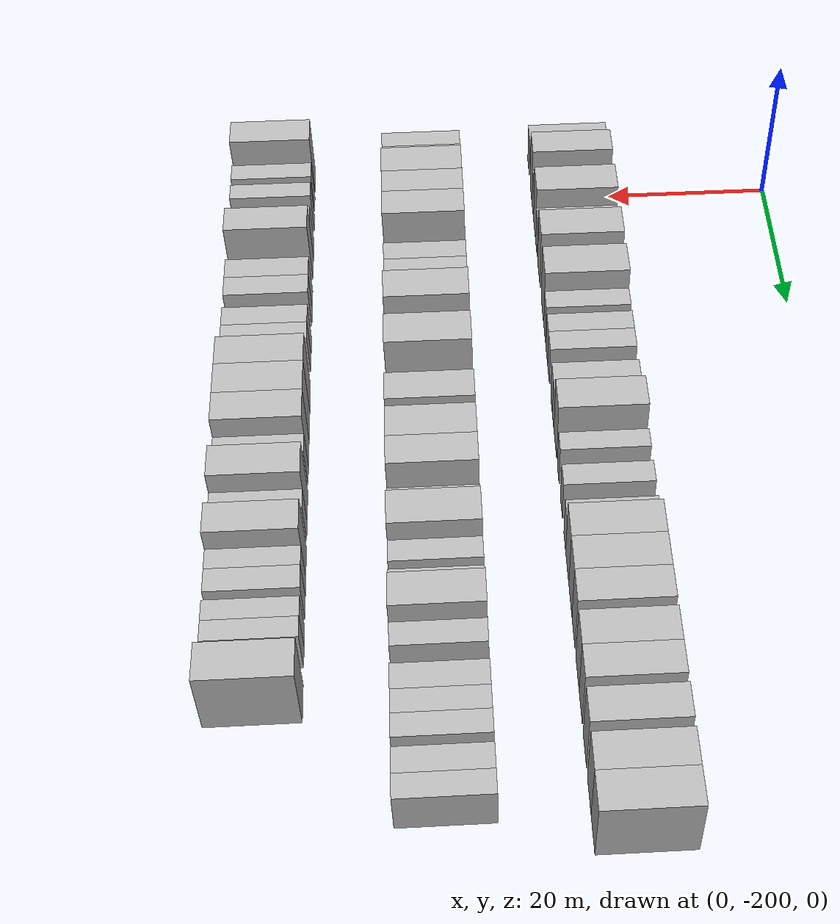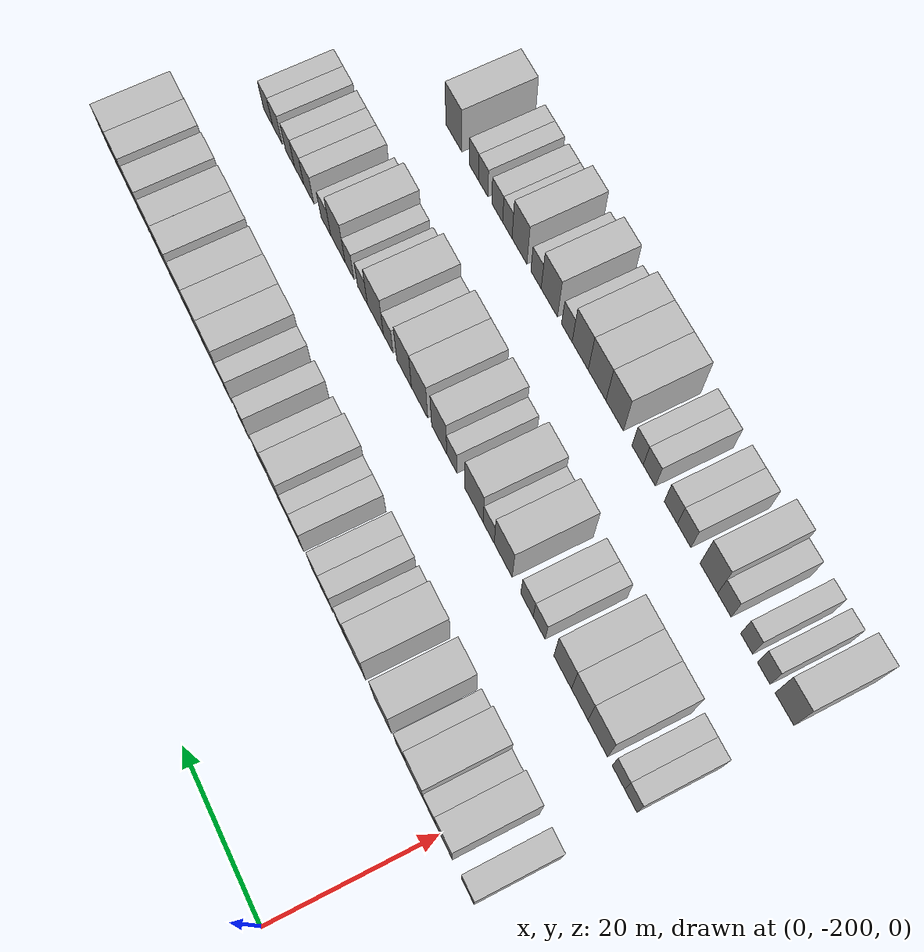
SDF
<sdf version="1.6">
 <world name="default">
  <model name="building_34">
   <static>1</static>
   <pose>25.0000 -206.2779 0 0.000000 0.000000 0.000000</pose>
   <link name="link">
    <pose>0 0 3.00 0 0 0</pose>
    <collision name="collision"><geometry><box><size>10.0000 2.8583 6.0000</size></box></geometry></collision>
    <visual name="visual">
     <cast_shadows>0</cast_shadows>
     <geometry><box><size>10.0000 2.8583 6.0000</size></box></geometry>
     <material>
      <script>
       <uri>model://HANNAS_wall/materials/scripts</uri>
       <uri>model://HANNAS_wall/materials/textures</uri>
       <name>vrc/HANNAS_wall</name>
      </script>
     </material>
    </visual>
   </link>
  </model>
  <model name="building_35">
   <static>1</static>
   <pose>25.0000 -200.9639 0 0.000000 0.000000 0.000000</pose>
   <link name="link">
    <pose>0 0 4.50 0 0 0</pose>
    <collision name="collision"><geometry><box><size>10.0000 3.7698 9.0000</size></box></geometry></collision>
    <visual name="visual">
     <cast_shadows>0</cast_shadows>
     <geometry><box><size>10.0000 3.7698 9.0000</size></box></geometry>
     <material>
      <script>
       <uri>model://HANNAS_wall/materials/scripts</uri>
       <uri>model://HANNAS_wall/materials/textures</uri>
       <name>vrc/HANNAS_wall</name>
      </script>
     </material>
    </visual>
   </link>
  </model>
  <model name="building_36">
   <static>1</static>
   <pose>25.0000 -197.6932 0 0.000000 0.000000 0.000000</pose>
   <link name="link">
    <pose>0 0 3.00 0 0 0</pose>
    <collision name="collision"><geometry><box><size>10.0000 2.7715 6.0000</size></box></geometry></collision>
    <visual name="visual">
     <cast_shadows>0</cast_shadows>
     <geometry><box><size>10.0000 2.7715 6.0000</size></box></geometry>
     <material>
      <script>
       <uri>model://HANNAS_wall/materials/scripts</uri>
       <uri>model://HANNAS_wall/materials/textures</uri>
       <name>vrc/HANNAS_wall</name>
      </script>
     </material>
    </visual>
   </link>
  </model>
  <model name="building_37">
   <static>1</static>
   <pose>25.0000 -194.2032 0 0.000000 0.000000 0.000000</pose>
   <link name="link">
    <pose>0 0 4.50 0 0 0</pose>
    <collision name="collision"><geometry><box><size>10.0000 4.2087 9.0000</size></box></geometry></collision>
    <visual name="visual">
     <cast_shadows>0</cast_shadows>
     <geometry><box><size>10.0000 4.2087 9.0000</size></box></geometry>
     <material>
      <script>
       <uri>model://HANNAS_wall/materials/scripts</uri>
       <uri>model://HANNAS_wall/materials/textures</uri>
       <name>vrc/HANNAS_wall</name>
      </script>
     </material>
    </visual>
   </link>
  </model>
  <model name="building_38">
   <static>1</static>
   <pose>25.0000 -190.8479 0 0.000000 0.000000 0.000000</pose>
   <link name="link">
    <pose>0 0 3.00 0 0 0</pose>
    <collision name="collision"><geometry><box><size>10.0000 2.5019 6.0000</size></box></geometry></collision>
    <visual name="visual">
     <cast_shadows>0</cast_shadows>
     <geometry><box><size>10.0000 2.5019 6.0000</size></box></geometry>
     <material>
      <script>
       <uri>model://HANNAS_wall/materials/scripts</uri>
       <uri>model://HANNAS_wall/materials/textures</uri>
       <name>vrc/HANNAS_wall</name>
      </script>
     </material>
    </visual>
   </link>
  </model>
  <model name="building_39">
   <static>1</static>
   <pose>25.0000 -186.4623 0 0.000000 0.000000 0.000000</pose>
   <link name="link">
    <pose>0 0 4.50 0 0 0</pose>
    <collision name="collision"><geometry><box><size>10.0000 4.2692 9.0000</size></box></geometry></collision>
    <visual name="visual">
     <cast_shadows>0</cast_shadows>
     <geometry><box><size>10.0000 4.2692 9.0000</size></box></geometry>
     <material>
      <script>
       <uri>model://HANNAS_wall/materials/scripts</uri>
       <uri>model://HANNAS_wall/materials/textures</uri>
       <name>vrc/HANNAS_wall</name>
      </script>
     </material>
    </visual>
   </link>
  </model>
  <model name="building_40">
   <static>1</static>
   <pose>25.0000 -180.0829 0 0.000000 0.000000 0.000000</pose>
   <link name="link">
    <pose>0 0 4.50 0 0 0</pose>
    <collision name="collision"><geometry><box><size>10.0000 4.4897 9.0000</size></box></geometry></collision>
    <visual name="visual">
     <cast_shadows>0</cast_shadows>
     <geometry><box><size>10.0000 4.4897 9.0000</size></box></geometry>
     <material>
      <script>
       <uri>model://HANNAS_wall/materials/scripts</uri>
       <uri>model://HANNAS_wall/materials/textures</uri>
       <name>vrc/HANNAS_wall</name>
      </script>
     </material>
    </visual>
   </link>
  </model>
  <model name="building_41">
   <static>1</static>
   <pose>25.0000 -176.4945 0 0.000000 0.000000 0.000000</pose>
   <link name="link">
    <pose>0 0 3.00 0 0 0</pose>
    <collision name="collision"><geometry><box><size>10.0000 2.6871 6.0000</size></box></geometry></collision>
    <visual name="visual">
     <cast_shadows>0</cast_shadows>
     <geometry><box><size>10.0000 2.6871 6.0000</size></box></geometry>
     <material>
      <script>
       <uri>model://HANNAS_wall/materials/scripts</uri>
       <uri>model://HANNAS_wall/materials/textures</uri>
       <name>vrc/HANNAS_wall</name>
      </script>
     </material>
    </visual>
   </link>
  </model>
  <model name="building_42">
   <static>1</static>
   <pose>25.0000 -172.7683 0 0.000000 0.000000 0.000000</pose>
   <link name="link">
    <pose>0 0 3.00 0 0 0</pose>
    <collision name="collision"><geometry><box><size>10.0000 2.7653 6.0000</size></box></geometry></collision>
    <visual name="visual">
     <cast_shadows>0</cast_shadows>
     <geometry><box><size>10.0000 2.7653 6.0000</size></box></geometry>
     <material>
      <script>
       <uri>model://HANNAS_wall/materials/scripts</uri>
       <uri>model://HANNAS_wall/materials/textures</uri>
       <name>vrc/HANNAS_wall</name>
      </script>
     </material>
    </visual>
   </link>
  </model>
  <model name="building_43">
   <static>1</static>
   <pose>25.0000 -169.9595 0 0.000000 0.000000 0.000000</pose>
   <link name="link">
    <pose>0 0 3.00 0 0 0</pose>
    <collision name="collision"><geometry><box><size>10.0000 2.8523 6.0000</size></box></geometry></collision>
    <visual name="visual">
     <cast_shadows>0</cast_shadows>
     <geometry><box><size>10.0000 2.8523 6.0000</size></box></geometry>
     <material>
      <script>
       <uri>model://HANNAS_wall/materials/scripts</uri>
       <uri>model://HANNAS_wall/materials/textures</uri>
       <name>vrc/HANNAS_wall</name>
      </script>
     </material>
    </visual>
   </link>
  </model>
  <model name="building_44">
   <static>1</static>
   <pose>25.0000 -165.2083 0 0.000000 0.000000 0.000000</pose>
   <link name="link">
    <pose>0 0 3.00 0 0 0</pose>
    <collision name="collision"><geometry><box><size>10.0000 2.6502 6.0000</size></box></geometry></collision>
    <visual name="visual">
     <cast_shadows>0</cast_shadows>
     <geometry><box><size>10.0000 2.6502 6.0000</size></box></geometry>
     <material>
      <script>
       <uri>model://HANNAS_wall/materials/scripts</uri>
       <uri>model://HANNAS_wall/materials/textures</uri>
       <name>vrc/HANNAS_wall</name>
      </script>
     </material>
    </visual>
   </link>
  </model>
  <model name="building_45">
   <static>1</static>
   <pose>25.0000 -162.6723 0 0.000000 0.000000 0.000000</pose>
   <link name="link">
    <pose>0 0 3.00 0 0 0</pose>
    <collision name="collision"><geometry><box><size>10.0000 2.4218 6.0000</size></box></geometry></collision>
    <visual name="visual">
     <cast_shadows>0</cast_shadows>
     <geometry><box><size>10.0000 2.4218 6.0000</size></box></geometry>
     <material>
      <script>
       <uri>model://HANNAS_wall/materials/scripts</uri>
       <uri>model://HANNAS_wall/materials/textures</uri>
       <name>vrc/HANNAS_wall</name>
      </script>
     </material>
    </visual>
   </link>
  </model>
  <model name="building_46">
   <static>1</static>
   <pose>25.0000 -159.3870 0 0.000000 0.000000 0.000000</pose>
   <link name="link">
    <pose>0 0 4.50 0 0 0</pose>
    <collision name="collision"><geometry><box><size>10.0000 4.1486 9.0000</size></box></geometry></collision>
    <visual name="visual">
     <cast_shadows>0</cast_shadows>
     <geometry><box><size>10.0000 4.1486 9.0000</size></box></geometry>
     <material>
      <script>
       <uri>model://HANNAS_wall/materials/scripts</uri>
       <uri>model://HANNAS_wall/materials/textures</uri>
       <name>vrc/HANNAS_wall</name>
      </script>
     </material>
    </visual>
   </link>
  </model>
  <model name="building_47">
   <static>1</static>
   <pose>25.0000 -155.0709 0 0.000000 0.000000 0.000000</pose>
   <link name="link">
    <pose>0 0 3.00 0 0 0</pose>
    <collision name="collision"><geometry><box><size>10.0000 2.4835 6.0000</size></box></geometry></collision>
    <visual name="visual">
     <cast_shadows>0</cast_shadows>
     <geometry><box><size>10.0000 2.4835 6.0000</size></box></geometry>
     <material>
      <script>
       <uri>model://HANNAS_wall/materials/scripts</uri>
       <uri>model://HANNAS_wall/materials/textures</uri>
       <name>vrc/HANNAS_wall</name>
      </script>
     </material>
    </visual>
   </link>
  </model>
  <model name="building_48">
   <static>1</static>
   <pose>25.0000 -150.4321 0 0.000000 0.000000 0.000000</pose>
   <link name="link">
    <pose>0 0 3.00 0 0 0</pose>
    <collision name="collision"><geometry><box><size>10.0000 2.7941 6.0000</size></box></geometry></collision>
    <visual name="visual">
     <cast_shadows>0</cast_shadows>
     <geometry><box><size>10.0000 2.7941 6.0000</size></box></geometry>
     <material>
      <script>
       <uri>model://HANNAS_wall/materials/scripts</uri>
       <uri>model://HANNAS_wall/materials/textures</uri>
       <name>vrc/HANNAS_wall</name>
      </script>
     </material>
    </visual>
   </link>
  </model>
  <model name="building_49">
   <static>1</static>
   <pose>25.0000 -145.6958 0 0.000000 0.000000 0.000000</pose>
   <link name="link">
    <pose>0 0 3.00 0 0 0</pose>
    <collision name="collision"><geometry><box><size>10.0000 2.6785 6.0000</size></box></geometry></collision>
    <visual name="visual">
     <cast_shadows>0</cast_shadows>
     <geometry><box><size>10.0000 2.6785 6.0000</size></box></geometry>
     <material>
      <script>
       <uri>model://HANNAS_wall/materials/scripts</uri>
       <uri>model://HANNAS_wall/materials/textures</uri>
       <name>vrc/HANNAS_wall</name>
      </script>
     </material>
    </visual>
   </link>
  </model>
  <model name="building_50">
   <static>1</static>
   <pose>25.0000 -142.2751 0 0.000000 0.000000 0.000000</pose>
   <link name="link">
    <pose>0 0 4.50 0 0 0</pose>
    <collision name="collision"><geometry><box><size>10.0000 4.1628 9.0000</size></box></geometry></collision>
    <visual name="visual">
     <cast_shadows>0</cast_shadows>
     <geometry><box><size>10.0000 4.1628 9.0000</size></box></geometry>
     <material>
      <script>
       <uri>model://HANNAS_wall/materials/scripts</uri>
       <uri>model://HANNAS_wall/materials/textures</uri>
       <name>vrc/HANNAS_wall</name>
      </script>
     </material>
    </visual>
   </link>
  </model>
  <model name="building_51">
   <static>1</static>
   <pose>25.0000 -138.1461 0 0.000000 0.000000 0.000000</pose>
   <link name="link">
    <pose>0 0 4.50 0 0 0</pose>
    <collision name="collision"><geometry><box><size>10.0000 4.0952 9.0000</size></box></geometry></collision>
    <visual name="visual">
     <cast_shadows>0</cast_shadows>
     <geometry><box><size>10.0000 4.0952 9.0000</size></box></geometry>
     <material>
      <script>
       <uri>model://HANNAS_wall/materials/scripts</uri>
       <uri>model://HANNAS_wall/materials/textures</uri>
       <name>vrc/HANNAS_wall</name>
      </script>
     </material>
    </visual>
   </link>
  </model>
  <model name="building_52">
   <static>1</static>
   <pose>25.0000 -134.1554 0 0.000000 0.000000 0.000000</pose>
   <link name="link">
    <pose>0 0 4.50 0 0 0</pose>
    <collision name="collision"><geometry><box><size>10.0000 3.8862 9.0000</size></box></geometry></collision>
    <visual name="visual">
     <cast_shadows>0</cast_shadows>
     <geometry><box><size>10.0000 3.8862 9.0000</size></box></geometry>
     <material>
      <script>
       <uri>model://HANNAS_wall/materials/scripts</uri>
       <uri>model://HANNAS_wall/materials/textures</uri>
       <name>vrc/HANNAS_wall</name>
      </script>
     </material>
    </visual>
   </link>
  </model>
  <model name="building_53">
   <static>1</static>
   <pose>25.0000 -129.2157 0 0.000000 0.000000 0.000000</pose>
   <link name="link">
    <pose>0 0 4.50 0 0 0</pose>
    <collision name="collision"><geometry><box><size>10.0000 3.9932 9.0000</size></box></geometry></collision>
    <visual name="visual">
     <cast_shadows>0</cast_shadows>
     <geometry><box><size>10.0000 3.9932 9.0000</size></box></geometry>
     <material>
      <script>
       <uri>model://HANNAS_wall/materials/scripts</uri>
       <uri>model://HANNAS_wall/materials/textures</uri>
       <name>vrc/HANNAS_wall</name>
      </script>
     </material>
    </visual>
   </link>
  </model>
  <model name="building_54">
   <static>1</static>
   <pose>25.0000 -125.3410 0 0.000000 0.000000 0.000000</pose>
   <link name="link">
    <pose>0 0 4.50 0 0 0</pose>
    <collision name="collision"><geometry><box><size>10.0000 3.7561 9.0000</size></box></geometry></collision>
    <visual name="visual">
     <cast_shadows>0</cast_shadows>
     <geometry><box><size>10.0000 3.7561 9.0000</size></box></geometry>
     <material>
      <script>
       <uri>model://HANNAS_wall/materials/scripts</uri>
       <uri>model://HANNAS_wall/materials/textures</uri>
       <name>vrc/HANNAS_wall</name>
      </script>
     </material>
    </visual>
   </link>
  </model>
  <model name="building_55">
   <static>1</static>
   <pose>25.0000 -120.5500 0 0.000000 0.000000 0.000000</pose>
   <link name="link">
    <pose>0 0 4.50 0 0 0</pose>
    <collision name="collision"><geometry><box><size>10.0000 3.8260 9.0000</size></box></geometry></collision>
    <visual name="visual">
     <cast_shadows>0</cast_shadows>
     <geometry><box><size>10.0000 3.8260 9.0000</size></box></geometry>
     <material>
      <script>
       <uri>model://HANNAS_wall/materials/scripts</uri>
       <uri>model://HANNAS_wall/materials/textures</uri>
       <name>vrc/HANNAS_wall</name>
      </script>
     </material>
    </visual>
   </link>
  </model>
  <model name="building_56">
   <static>1</static>
   <pose>25.0000 -115.6265 0 0.000000 0.000000 0.000000</pose>
   <link name="link">
    <pose>0 0 4.50 0 0 0</pose>
    <collision name="collision"><geometry><box><size>10.0000 4.0209 9.0000</size></box></geometry></collision>
    <visual name="visual">
     <cast_shadows>0</cast_shadows>
     <geometry><box><size>10.0000 4.0209 9.0000</size></box></geometry>
     <material>
      <script>
       <uri>model://HANNAS_wall/materials/scripts</uri>
       <uri>model://HANNAS_wall/materials/textures</uri>
       <name>vrc/HANNAS_wall</name>
      </script>
     </material>
    </visual>
   </link>
  </model>
  <model name="building_57">
   <static>1</static>
   <pose>25.0000 -111.5318 0 0.000000 0.000000 0.000000</pose>
   <link name="link">
    <pose>0 0 4.50 0 0 0</pose>
    <collision name="collision"><geometry><box><size>10.0000 4.1685 9.0000</size></box></geometry></collision>
    <visual name="visual">
     <cast_shadows>0</cast_shadows>
     <geometry><box><size>10.0000 4.1685 9.0000</size></box></geometry>
     <material>
      <script>
       <uri>model://HANNAS_wall/materials/scripts</uri>
       <uri>model://HANNAS_wall/materials/textures</uri>
       <name>vrc/HANNAS_wall</name>
      </script>
     </material>
    </visual>
   </link>
  </model>
  <model name="building_205">
   <static>1</static>
   <pose>44.0000 -205.8997 0 0.000000 0.000000 0.000000</pose>
   <link name="link">
    <pose>0 0 3.00 0 0 0</pose>
    <collision name="collision"><geometry><box><size>10.0000 2.5930 6.0000</size></box></geometry></collision>
    <visual name="visual">
     <cast_shadows>0</cast_shadows>
     <geometry><box><size>10.0000 2.5930 6.0000</size></box></geometry>
     <material>
      <script>
       <uri>model://HANNAS_wall/materials/scripts</uri>
       <uri>model://HANNAS_wall/materials/textures</uri>
       <name>vrc/HANNAS_wall</name>
      </script>
     </material>
    </visual>
   </link>
  </model>
  <model name="building_206">
   <static>1</static>
   <pose>44.0000 -203.2627 0 0.000000 0.000000 0.000000</pose>
   <link name="link">
    <pose>0 0 3.00 0 0 0</pose>
    <collision name="collision"><geometry><box><size>10.0000 2.6810 6.0000</size></box></geometry></collision>
    <visual name="visual">
     <cast_shadows>0</cast_shadows>
     <geometry><box><size>10.0000 2.6810 6.0000</size></box></geometry>
     <material>
      <script>
       <uri>model://HANNAS_wall/materials/scripts</uri>
       <uri>model://HANNAS_wall/materials/textures</uri>
       <name>vrc/HANNAS_wall</name>
      </script>
     </material>
    </visual>
   </link>
  </model>
  <model name="building_207">
   <static>1</static>
   <pose>44.0000 -198.7807 0 0.000000 0.000000 0.000000</pose>
   <link name="link">
    <pose>0 0 4.50 0 0 0</pose>
    <collision name="collision"><geometry><box><size>10.0000 4.2829 9.0000</size></box></geometry></collision>
    <visual name="visual">
     <cast_shadows>0</cast_shadows>
     <geometry><box><size>10.0000 4.2829 9.0000</size></box></geometry>
     <material>
      <script>
       <uri>model://HANNAS_wall/materials/scripts</uri>
       <uri>model://HANNAS_wall/materials/textures</uri>
       <name>vrc/HANNAS_wall</name>
      </script>
     </material>
    </visual>
   </link>
  </model>
  <model name="building_208">
   <static>1</static>
   <pose>44.0000 -194.8047 0 0.000000 0.000000 0.000000</pose>
   <link name="link">
    <pose>0 0 4.50 0 0 0</pose>
    <collision name="collision"><geometry><box><size>10.0000 3.6692 9.0000</size></box></geometry></collision>
    <visual name="visual">
     <cast_shadows>0</cast_shadows>
     <geometry><box><size>10.0000 3.6692 9.0000</size></box></geometry>
     <material>
      <script>
       <uri>model://HANNAS_wall/materials/scripts</uri>
       <uri>model://HANNAS_wall/materials/textures</uri>
       <name>vrc/HANNAS_wall</name>
      </script>
     </material>
    </visual>
   </link>
  </model>
  <model name="building_209">
   <static>1</static>
   <pose>44.0000 -190.9910 0 0.000000 0.000000 0.000000</pose>
   <link name="link">
    <pose>0 0 4.50 0 0 0</pose>
    <collision name="collision"><geometry><box><size>10.0000 3.9582 9.0000</size></box></geometry></collision>
    <visual name="visual">
     <cast_shadows>0</cast_shadows>
     <geometry><box><size>10.0000 3.9582 9.0000</size></box></geometry>
     <material>
      <script>
       <uri>model://HANNAS_wall/materials/scripts</uri>
       <uri>model://HANNAS_wall/materials/textures</uri>
       <name>vrc/HANNAS_wall</name>
      </script>
     </material>
    </visual>
   </link>
  </model>
  <model name="building_210">
   <static>1</static>
   <pose>44.0000 -185.6369 0 0.000000 0.000000 0.000000</pose>
   <link name="link">
    <pose>0 0 3.00 0 0 0</pose>
    <collision name="collision"><geometry><box><size>10.0000 2.7499 6.0000</size></box></geometry></collision>
    <visual name="visual">
     <cast_shadows>0</cast_shadows>
     <geometry><box><size>10.0000 2.7499 6.0000</size></box></geometry>
     <material>
      <script>
       <uri>model://HANNAS_wall/materials/scripts</uri>
       <uri>model://HANNAS_wall/materials/textures</uri>
       <name>vrc/HANNAS_wall</name>
      </script>
     </material>
    </visual>
   </link>
  </model>
  <model name="building_211">
   <static>1</static>
   <pose>44.0000 -182.8170 0 0.000000 0.000000 0.000000</pose>
   <link name="link">
    <pose>0 0 3.00 0 0 0</pose>
    <collision name="collision"><geometry><box><size>10.0000 2.8900 6.0000</size></box></geometry></collision>
    <visual name="visual">
     <cast_shadows>0</cast_shadows>
     <geometry><box><size>10.0000 2.8900 6.0000</size></box></geometry>
     <material>
      <script>
       <uri>model://HANNAS_wall/materials/scripts</uri>
       <uri>model://HANNAS_wall/materials/textures</uri>
       <name>vrc/HANNAS_wall</name>
      </script>
     </material>
    </visual>
   </link>
  </model>
  <model name="building_212">
   <static>1</static>
   <pose>44.0000 -177.2403 0 0.000000 0.000000 0.000000</pose>
   <link name="link">
    <pose>0 0 4.50 0 0 0</pose>
    <collision name="collision"><geometry><box><size>10.0000 4.2633 9.0000</size></box></geometry></collision>
    <visual name="visual">
     <cast_shadows>0</cast_shadows>
     <geometry><box><size>10.0000 4.2633 9.0000</size></box></geometry>
     <material>
      <script>
       <uri>model://HANNAS_wall/materials/scripts</uri>
       <uri>model://HANNAS_wall/materials/textures</uri>
       <name>vrc/HANNAS_wall</name>
      </script>
     </material>
    </visual>
   </link>
  </model>
  <model name="building_213">
   <static>1</static>
   <pose>44.0000 -173.7747 0 0.000000 0.000000 0.000000</pose>
   <link name="link">
    <pose>0 0 3.00 0 0 0</pose>
    <collision name="collision"><geometry><box><size>10.0000 2.6679 6.0000</size></box></geometry></collision>
    <visual name="visual">
     <cast_shadows>0</cast_shadows>
     <geometry><box><size>10.0000 2.6679 6.0000</size></box></geometry>
     <material>
      <script>
       <uri>model://HANNAS_wall/materials/scripts</uri>
       <uri>model://HANNAS_wall/materials/textures</uri>
       <name>vrc/HANNAS_wall</name>
      </script>
     </material>
    </visual>
   </link>
  </model>
  <model name="building_214">
   <static>1</static>
   <pose>44.0000 -170.2261 0 0.000000 0.000000 0.000000</pose>
   <link name="link">
    <pose>0 0 4.50 0 0 0</pose>
    <collision name="collision"><geometry><box><size>10.0000 4.4292 9.0000</size></box></geometry></collision>
    <visual name="visual">
     <cast_shadows>0</cast_shadows>
     <geometry><box><size>10.0000 4.4292 9.0000</size></box></geometry>
     <material>
      <script>
       <uri>model://HANNAS_wall/materials/scripts</uri>
       <uri>model://HANNAS_wall/materials/textures</uri>
       <name>vrc/HANNAS_wall</name>
      </script>
     </material>
    </visual>
   </link>
  </model>
  <model name="building_215">
   <static>1</static>
   <pose>44.0000 -164.7394 0 0.000000 0.000000 0.000000</pose>
   <link name="link">
    <pose>0 0 3.00 0 0 0</pose>
    <collision name="collision"><geometry><box><size>10.0000 2.5443 6.0000</size></box></geometry></collision>
    <visual name="visual">
     <cast_shadows>0</cast_shadows>
     <geometry><box><size>10.0000 2.5443 6.0000</size></box></geometry>
     <material>
      <script>
       <uri>model://HANNAS_wall/materials/scripts</uri>
       <uri>model://HANNAS_wall/materials/textures</uri>
       <name>vrc/HANNAS_wall</name>
      </script>
     </material>
    </visual>
   </link>
  </model>
  <model name="building_216">
   <static>1</static>
   <pose>44.0000 -161.5590 0 0.000000 0.000000 0.000000</pose>
   <link name="link">
    <pose>0 0 4.50 0 0 0</pose>
    <collision name="collision"><geometry><box><size>10.0000 3.8164 9.0000</size></box></geometry></collision>
    <visual name="visual">
     <cast_shadows>0</cast_shadows>
     <geometry><box><size>10.0000 3.8164 9.0000</size></box></geometry>
     <material>
      <script>
       <uri>model://HANNAS_wall/materials/scripts</uri>
       <uri>model://HANNAS_wall/materials/textures</uri>
       <name>vrc/HANNAS_wall</name>
      </script>
     </material>
    </visual>
   </link>
  </model>
  <model name="building_217">
   <static>1</static>
   <pose>44.0000 -156.5576 0 0.000000 0.000000 0.000000</pose>
   <link name="link">
    <pose>0 0 4.50 0 0 0</pose>
    <collision name="collision"><geometry><box><size>10.0000 4.1865 9.0000</size></box></geometry></collision>
    <visual name="visual">
     <cast_shadows>0</cast_shadows>
     <geometry><box><size>10.0000 4.1865 9.0000</size></box></geometry>
     <material>
      <script>
       <uri>model://HANNAS_wall/materials/scripts</uri>
       <uri>model://HANNAS_wall/materials/textures</uri>
       <name>vrc/HANNAS_wall</name>
      </script>
     </material>
    </visual>
   </link>
  </model>
  <model name="building_218">
   <static>1</static>
   <pose>44.0000 -152.5551 0 0.000000 0.000000 0.000000</pose>
   <link name="link">
    <pose>0 0 4.50 0 0 0</pose>
    <collision name="collision"><geometry><box><size>10.0000 3.8185 9.0000</size></box></geometry></collision>
    <visual name="visual">
     <cast_shadows>0</cast_shadows>
     <geometry><box><size>10.0000 3.8185 9.0000</size></box></geometry>
     <material>
      <script>
       <uri>model://HANNAS_wall/materials/scripts</uri>
       <uri>model://HANNAS_wall/materials/textures</uri>
       <name>vrc/HANNAS_wall</name>
      </script>
     </material>
    </visual>
   </link>
  </model>
  <model name="building_219">
   <static>1</static>
   <pose>44.0000 -148.3747 0 0.000000 0.000000 0.000000</pose>
   <link name="link">
    <pose>0 0 3.00 0 0 0</pose>
    <collision name="collision"><geometry><box><size>10.0000 2.5425 6.0000</size></box></geometry></collision>
    <visual name="visual">
     <cast_shadows>0</cast_shadows>
     <geometry><box><size>10.0000 2.5425 6.0000</size></box></geometry>
     <material>
      <script>
       <uri>model://HANNAS_wall/materials/scripts</uri>
       <uri>model://HANNAS_wall/materials/textures</uri>
       <name>vrc/HANNAS_wall</name>
      </script>
     </material>
    </visual>
   </link>
  </model>
  <model name="building_220">
   <static>1</static>
   <pose>44.0000 -144.9630 0 0.000000 0.000000 0.000000</pose>
   <link name="link">
    <pose>0 0 4.50 0 0 0</pose>
    <collision name="collision"><geometry><box><size>10.0000 4.2809 9.0000</size></box></geometry></collision>
    <visual name="visual">
     <cast_shadows>0</cast_shadows>
     <geometry><box><size>10.0000 4.2809 9.0000</size></box></geometry>
     <material>
      <script>
       <uri>model://HANNAS_wall/materials/scripts</uri>
       <uri>model://HANNAS_wall/materials/textures</uri>
       <name>vrc/HANNAS_wall</name>
      </script>
     </material>
    </visual>
   </link>
  </model>
  <model name="building_221">
   <static>1</static>
   <pose>44.0000 -141.4853 0 0.000000 0.000000 0.000000</pose>
   <link name="link">
    <pose>0 0 3.00 0 0 0</pose>
    <collision name="collision"><geometry><box><size>10.0000 2.6745 6.0000</size></box></geometry></collision>
    <visual name="visual">
     <cast_shadows>0</cast_shadows>
     <geometry><box><size>10.0000 2.6745 6.0000</size></box></geometry>
     <material>
      <script>
       <uri>model://HANNAS_wall/materials/scripts</uri>
       <uri>model://HANNAS_wall/materials/textures</uri>
       <name>vrc/HANNAS_wall</name>
      </script>
     </material>
    </visual>
   </link>
  </model>
  <model name="building_222">
   <static>1</static>
   <pose>44.0000 -137.9323 0 0.000000 0.000000 0.000000</pose>
   <link name="link">
    <pose>0 0 3.00 0 0 0</pose>
    <collision name="collision"><geometry><box><size>10.0000 2.4314 6.0000</size></box></geometry></collision>
    <visual name="visual">
     <cast_shadows>0</cast_shadows>
     <geometry><box><size>10.0000 2.4314 6.0000</size></box></geometry>
     <material>
      <script>
       <uri>model://HANNAS_wall/materials/scripts</uri>
       <uri>model://HANNAS_wall/materials/textures</uri>
       <name>vrc/HANNAS_wall</name>
      </script>
     </material>
    </visual>
   </link>
  </model>
  <model name="building_223">
   <static>1</static>
   <pose>44.0000 -134.7167 0 0.000000 0.000000 0.000000</pose>
   <link name="link">
    <pose>0 0 4.50 0 0 0</pose>
    <collision name="collision"><geometry><box><size>10.0000 3.9998 9.0000</size></box></geometry></collision>
    <visual name="visual">
     <cast_shadows>0</cast_shadows>
     <geometry><box><size>10.0000 3.9998 9.0000</size></box></geometry>
     <material>
      <script>
       <uri>model://HANNAS_wall/materials/scripts</uri>
       <uri>model://HANNAS_wall/materials/textures</uri>
       <name>vrc/HANNAS_wall</name>
      </script>
     </material>
    </visual>
   </link>
  </model>
  <model name="building_224">
   <static>1</static>
   <pose>44.0000 -131.3244 0 0.000000 0.000000 0.000000</pose>
   <link name="link">
    <pose>0 0 3.00 0 0 0</pose>
    <collision name="collision"><geometry><box><size>10.0000 2.7848 6.0000</size></box></geometry></collision>
    <visual name="visual">
     <cast_shadows>0</cast_shadows>
     <geometry><box><size>10.0000 2.7848 6.0000</size></box></geometry>
     <material>
      <script>
       <uri>model://HANNAS_wall/materials/scripts</uri>
       <uri>model://HANNAS_wall/materials/textures</uri>
       <name>vrc/HANNAS_wall</name>
      </script>
     </material>
    </visual>
   </link>
  </model>
  <model name="building_225">
   <static>1</static>
   <pose>44.0000 -126.4768 0 0.000000 0.000000 0.000000</pose>
   <link name="link">
    <pose>0 0 3.00 0 0 0</pose>
    <collision name="collision"><geometry><box><size>10.0000 2.9105 6.0000</size></box></geometry></collision>
    <visual name="visual">
     <cast_shadows>0</cast_shadows>
     <geometry><box><size>10.0000 2.9105 6.0000</size></box></geometry>
     <material>
      <script>
       <uri>model://HANNAS_wall/materials/scripts</uri>
       <uri>model://HANNAS_wall/materials/textures</uri>
       <name>vrc/HANNAS_wall</name>
      </script>
     </material>
    </visual>
   </link>
  </model>
  <model name="building_226">
   <static>1</static>
   <pose>44.0000 -123.6899 0 0.000000 0.000000 0.000000</pose>
   <link name="link">
    <pose>0 0 3.00 0 0 0</pose>
    <collision name="collision"><geometry><box><size>10.0000 2.6633 6.0000</size></box></geometry></collision>
    <visual name="visual">
     <cast_shadows>0</cast_shadows>
     <geometry><box><size>10.0000 2.6633 6.0000</size></box></geometry>
     <material>
      <script>
       <uri>model://HANNAS_wall/materials/scripts</uri>
       <uri>model://HANNAS_wall/materials/textures</uri>
       <name>vrc/HANNAS_wall</name>
      </script>
     </material>
    </visual>
   </link>
  </model>
  <model name="building_227">
   <static>1</static>
   <pose>44.0000 -121.0398 0 0.000000 0.000000 0.000000</pose>
   <link name="link">
    <pose>0 0 3.00 0 0 0</pose>
    <collision name="collision"><geometry><box><size>10.0000 2.6369 6.0000</size></box></geometry></collision>
    <visual name="visual">
     <cast_shadows>0</cast_shadows>
     <geometry><box><size>10.0000 2.6369 6.0000</size></box></geometry>
     <material>
      <script>
       <uri>model://HANNAS_wall/materials/scripts</uri>
       <uri>model://HANNAS_wall/materials/textures</uri>
       <name>vrc/HANNAS_wall</name>
      </script>
     </material>
    </visual>
   </link>
  </model>
  <model name="building_228">
   <static>1</static>
   <pose>44.0000 -117.3161 0 0.000000 0.000000 0.000000</pose>
   <link name="link">
    <pose>0 0 3.00 0 0 0</pose>
    <collision name="collision"><geometry><box><size>10.0000 2.8104 6.0000</size></box></geometry></collision>
    <visual name="visual">
     <cast_shadows>0</cast_shadows>
     <geometry><box><size>10.0000 2.8104 6.0000</size></box></geometry>
     <material>
      <script>
       <uri>model://HANNAS_wall/materials/scripts</uri>
       <uri>model://HANNAS_wall/materials/textures</uri>
       <name>vrc/HANNAS_wall</name>
      </script>
     </material>
    </visual>
   </link>
  </model>
  <model name="building_229">
   <static>1</static>
   <pose>44.0000 -114.5744 0 0.000000 0.000000 0.000000</pose>
   <link name="link">
    <pose>0 0 3.00 0 0 0</pose>
    <collision name="collision"><geometry><box><size>10.0000 2.6731 6.0000</size></box></geometry></collision>
    <visual name="visual">
     <cast_shadows>0</cast_shadows>
     <geometry><box><size>10.0000 2.6731 6.0000</size></box></geometry>
     <material>
      <script>
       <uri>model://HANNAS_wall/materials/scripts</uri>
       <uri>model://HANNAS_wall/materials/textures</uri>
       <name>vrc/HANNAS_wall</name>
      </script>
     </material>
    </visual>
   </link>
  </model>
  <model name="building_385">
   <static>1</static>
   <pose>63.0000 -204.9426 0 0.000000 0.000000 0.000000</pose>
   <link name="link">
    <pose>0 0 4.50 0 0 0</pose>
    <collision name="collision"><geometry><box><size>10.0000 3.8346 9.0000</size></box></geometry></collision>
    <visual name="visual">
     <cast_shadows>0</cast_shadows>
     <geometry><box><size>10.0000 3.8346 9.0000</size></box></geometry>
     <material>
      <script>
       <uri>model://HANNAS_wall/materials/scripts</uri>
       <uri>model://HANNAS_wall/materials/textures</uri>
       <name>vrc/HANNAS_wall</name>
      </script>
     </material>
    </visual>
   </link>
  </model>
  <model name="building_386">
   <static>1</static>
   <pose>63.0000 -200.7146 0 0.000000 0.000000 0.000000</pose>
   <link name="link">
    <pose>0 0 3.00 0 0 0</pose>
    <collision name="collision"><geometry><box><size>10.0000 2.6213 6.0000</size></box></geometry></collision>
    <visual name="visual">
     <cast_shadows>0</cast_shadows>
     <geometry><box><size>10.0000 2.6213 6.0000</size></box></geometry>
     <material>
      <script>
       <uri>model://HANNAS_wall/materials/scripts</uri>
       <uri>model://HANNAS_wall/materials/textures</uri>
       <name>vrc/HANNAS_wall</name>
      </script>
     </material>
    </visual>
   </link>
  </model>
  <model name="building_387">
   <static>1</static>
   <pose>63.0000 -197.1488 0 0.000000 0.000000 0.000000</pose>
   <link name="link">
    <pose>0 0 3.00 0 0 0</pose>
    <collision name="collision"><geometry><box><size>10.0000 2.5104 6.0000</size></box></geometry></collision>
    <visual name="visual">
     <cast_shadows>0</cast_shadows>
     <geometry><box><size>10.0000 2.5104 6.0000</size></box></geometry>
     <material>
      <script>
       <uri>model://HANNAS_wall/materials/scripts</uri>
       <uri>model://HANNAS_wall/materials/textures</uri>
       <name>vrc/HANNAS_wall</name>
      </script>
     </material>
    </visual>
   </link>
  </model>
  <model name="building_388">
   <static>1</static>
   <pose>63.0000 -192.4408 0 0.000000 0.000000 0.000000</pose>
   <link name="link">
    <pose>0 0 3.00 0 0 0</pose>
    <collision name="collision"><geometry><box><size>10.0000 2.9055 6.0000</size></box></geometry></collision>
    <visual name="visual">
     <cast_shadows>0</cast_shadows>
     <geometry><box><size>10.0000 2.9055 6.0000</size></box></geometry>
     <material>
      <script>
       <uri>model://HANNAS_wall/materials/scripts</uri>
       <uri>model://HANNAS_wall/materials/textures</uri>
       <name>vrc/HANNAS_wall</name>
      </script>
     </material>
    </visual>
   </link>
  </model>
  <model name="building_389">
   <static>1</static>
   <pose>63.0000 -189.0952 0 0.000000 0.000000 0.000000</pose>
   <link name="link">
    <pose>0 0 4.50 0 0 0</pose>
    <collision name="collision"><geometry><box><size>10.0000 3.7857 9.0000</size></box></geometry></collision>
    <visual name="visual">
     <cast_shadows>0</cast_shadows>
     <geometry><box><size>10.0000 3.7857 9.0000</size></box></geometry>
     <material>
      <script>
       <uri>model://HANNAS_wall/materials/scripts</uri>
       <uri>model://HANNAS_wall/materials/textures</uri>
       <name>vrc/HANNAS_wall</name>
      </script>
     </material>
    </visual>
   </link>
  </model>
  <model name="building_390">
   <static>1</static>
   <pose>63.0000 -183.7101 0 0.000000 0.000000 0.000000</pose>
   <link name="link">
    <pose>0 0 3.00 0 0 0</pose>
    <collision name="collision"><geometry><box><size>10.0000 2.9845 6.0000</size></box></geometry></collision>
    <visual name="visual">
     <cast_shadows>0</cast_shadows>
     <geometry><box><size>10.0000 2.9845 6.0000</size></box></geometry>
     <material>
      <script>
       <uri>model://HANNAS_wall/materials/scripts</uri>
       <uri>model://HANNAS_wall/materials/textures</uri>
       <name>vrc/HANNAS_wall</name>
      </script>
     </material>
    </visual>
   </link>
  </model>
  <model name="building_391">
   <static>1</static>
   <pose>63.0000 -180.7538 0 0.000000 0.000000 0.000000</pose>
   <link name="link">
    <pose>0 0 3.00 0 0 0</pose>
    <collision name="collision"><geometry><box><size>10.0000 2.9281 6.0000</size></box></geometry></collision>
    <visual name="visual">
     <cast_shadows>0</cast_shadows>
     <geometry><box><size>10.0000 2.9281 6.0000</size></box></geometry>
     <material>
      <script>
       <uri>model://HANNAS_wall/materials/scripts</uri>
       <uri>model://HANNAS_wall/materials/textures</uri>
       <name>vrc/HANNAS_wall</name>
      </script>
     </material>
    </visual>
   </link>
  </model>
  <model name="building_392">
   <static>1</static>
   <pose>63.0000 -175.8990 0 0.000000 0.000000 0.000000</pose>
   <link name="link">
    <pose>0 0 3.00 0 0 0</pose>
    <collision name="collision"><geometry><box><size>10.0000 2.7815 6.0000</size></box></geometry></collision>
    <visual name="visual">
     <cast_shadows>0</cast_shadows>
     <geometry><box><size>10.0000 2.7815 6.0000</size></box></geometry>
     <material>
      <script>
       <uri>model://HANNAS_wall/materials/scripts</uri>
       <uri>model://HANNAS_wall/materials/textures</uri>
       <name>vrc/HANNAS_wall</name>
      </script>
     </material>
    </visual>
   </link>
  </model>
  <model name="building_393">
   <static>1</static>
   <pose>63.0000 -173.2251 0 0.000000 0.000000 0.000000</pose>
   <link name="link">
    <pose>0 0 3.00 0 0 0</pose>
    <collision name="collision"><geometry><box><size>10.0000 2.5663 6.0000</size></box></geometry></collision>
    <visual name="visual">
     <cast_shadows>0</cast_shadows>
     <geometry><box><size>10.0000 2.5663 6.0000</size></box></geometry>
     <material>
      <script>
       <uri>model://HANNAS_wall/materials/scripts</uri>
       <uri>model://HANNAS_wall/materials/textures</uri>
       <name>vrc/HANNAS_wall</name>
      </script>
     </material>
    </visual>
   </link>
  </model>
  <model name="building_394">
   <static>1</static>
   <pose>63.0000 -167.9006 0 0.000000 0.000000 0.000000</pose>
   <link name="link">
    <pose>0 0 4.50 0 0 0</pose>
    <collision name="collision"><geometry><box><size>10.0000 4.0827 9.0000</size></box></geometry></collision>
    <visual name="visual">
     <cast_shadows>0</cast_shadows>
     <geometry><box><size>10.0000 4.0827 9.0000</size></box></geometry>
     <material>
      <script>
       <uri>model://HANNAS_wall/materials/scripts</uri>
       <uri>model://HANNAS_wall/materials/textures</uri>
       <name>vrc/HANNAS_wall</name>
      </script>
     </material>
    </visual>
   </link>
  </model>
  <model name="building_395">
   <static>1</static>
   <pose>63.0000 -163.7403 0 0.000000 0.000000 0.000000</pose>
   <link name="link">
    <pose>0 0 4.50 0 0 0</pose>
    <collision name="collision"><geometry><box><size>10.0000 4.2379 9.0000</size></box></geometry></collision>
    <visual name="visual">
     <cast_shadows>0</cast_shadows>
     <geometry><box><size>10.0000 4.2379 9.0000</size></box></geometry>
     <material>
      <script>
       <uri>model://HANNAS_wall/materials/scripts</uri>
       <uri>model://HANNAS_wall/materials/textures</uri>
       <name>vrc/HANNAS_wall</name>
      </script>
     </material>
    </visual>
   </link>
  </model>
  <model name="building_396">
   <static>1</static>
   <pose>63.0000 -159.6708 0 0.000000 0.000000 0.000000</pose>
   <link name="link">
    <pose>0 0 4.50 0 0 0</pose>
    <collision name="collision"><geometry><box><size>10.0000 3.9012 9.0000</size></box></geometry></collision>
    <visual name="visual">
     <cast_shadows>0</cast_shadows>
     <geometry><box><size>10.0000 3.9012 9.0000</size></box></geometry>
     <material>
      <script>
       <uri>model://HANNAS_wall/materials/scripts</uri>
       <uri>model://HANNAS_wall/materials/textures</uri>
       <name>vrc/HANNAS_wall</name>
      </script>
     </material>
    </visual>
   </link>
  </model>
  <model name="building_397">
   <static>1</static>
   <pose>63.0000 -156.4261 0 0.000000 0.000000 0.000000</pose>
   <link name="link">
    <pose>0 0 3.00 0 0 0</pose>
    <collision name="collision"><geometry><box><size>10.0000 2.5882 6.0000</size></box></geometry></collision>
    <visual name="visual">
     <cast_shadows>0</cast_shadows>
     <geometry><box><size>10.0000 2.5882 6.0000</size></box></geometry>
     <material>
      <script>
       <uri>model://HANNAS_wall/materials/scripts</uri>
       <uri>model://HANNAS_wall/materials/textures</uri>
       <name>vrc/HANNAS_wall</name>
      </script>
     </material>
    </visual>
   </link>
  </model>
  <model name="building_398">
   <static>1</static>
   <pose>63.0000 -152.1057 0 0.000000 0.000000 0.000000</pose>
   <link name="link">
    <pose>0 0 4.50 0 0 0</pose>
    <collision name="collision"><geometry><box><size>10.0000 4.0525 9.0000</size></box></geometry></collision>
    <visual name="visual">
     <cast_shadows>0</cast_shadows>
     <geometry><box><size>10.0000 4.0525 9.0000</size></box></geometry>
     <material>
      <script>
       <uri>model://HANNAS_wall/materials/scripts</uri>
       <uri>model://HANNAS_wall/materials/textures</uri>
       <name>vrc/HANNAS_wall</name>
      </script>
     </material>
    </visual>
   </link>
  </model>
  <model name="building_399">
   <static>1</static>
   <pose>63.0000 -148.7836 0 0.000000 0.000000 0.000000</pose>
   <link name="link">
    <pose>0 0 3.00 0 0 0</pose>
    <collision name="collision"><geometry><box><size>10.0000 2.5918 6.0000</size></box></geometry></collision>
    <visual name="visual">
     <cast_shadows>0</cast_shadows>
     <geometry><box><size>10.0000 2.5918 6.0000</size></box></geometry>
     <material>
      <script>
       <uri>model://HANNAS_wall/materials/scripts</uri>
       <uri>model://HANNAS_wall/materials/textures</uri>
       <name>vrc/HANNAS_wall</name>
      </script>
     </material>
    </visual>
   </link>
  </model>
  <model name="building_400">
   <static>1</static>
   <pose>63.0000 -144.5955 0 0.000000 0.000000 0.000000</pose>
   <link name="link">
    <pose>0 0 4.50 0 0 0</pose>
    <collision name="collision"><geometry><box><size>10.0000 3.7842 9.0000</size></box></geometry></collision>
    <visual name="visual">
     <cast_shadows>0</cast_shadows>
     <geometry><box><size>10.0000 3.7842 9.0000</size></box></geometry>
     <material>
      <script>
       <uri>model://HANNAS_wall/materials/scripts</uri>
       <uri>model://HANNAS_wall/materials/textures</uri>
       <name>vrc/HANNAS_wall</name>
      </script>
     </material>
    </visual>
   </link>
  </model>
  <model name="building_401">
   <static>1</static>
   <pose>63.0000 -141.4828 0 0.000000 0.000000 0.000000</pose>
   <link name="link">
    <pose>0 0 3.00 0 0 0</pose>
    <collision name="collision"><geometry><box><size>10.0000 2.4413 6.0000</size></box></geometry></collision>
    <visual name="visual">
     <cast_shadows>0</cast_shadows>
     <geometry><box><size>10.0000 2.4413 6.0000</size></box></geometry>
     <material>
      <script>
       <uri>model://HANNAS_wall/materials/scripts</uri>
       <uri>model://HANNAS_wall/materials/textures</uri>
       <name>vrc/HANNAS_wall</name>
      </script>
     </material>
    </visual>
   </link>
  </model>
  <model name="building_402">
   <static>1</static>
   <pose>63.0000 -138.8406 0 0.000000 0.000000 0.000000</pose>
   <link name="link">
    <pose>0 0 3.00 0 0 0</pose>
    <collision name="collision"><geometry><box><size>10.0000 2.8430 6.0000</size></box></geometry></collision>
    <visual name="visual">
     <cast_shadows>0</cast_shadows>
     <geometry><box><size>10.0000 2.8430 6.0000</size></box></geometry>
     <material>
      <script>
       <uri>model://HANNAS_wall/materials/scripts</uri>
       <uri>model://HANNAS_wall/materials/textures</uri>
       <name>vrc/HANNAS_wall</name>
      </script>
     </material>
    </visual>
   </link>
  </model>
  <model name="building_403">
   <static>1</static>
   <pose>63.0000 -135.2013 0 0.000000 0.000000 0.000000</pose>
   <link name="link">
    <pose>0 0 3.00 0 0 0</pose>
    <collision name="collision"><geometry><box><size>10.0000 2.4356 6.0000</size></box></geometry></collision>
    <visual name="visual">
     <cast_shadows>0</cast_shadows>
     <geometry><box><size>10.0000 2.4356 6.0000</size></box></geometry>
     <material>
      <script>
       <uri>model://HANNAS_wall/materials/scripts</uri>
       <uri>model://HANNAS_wall/materials/textures</uri>
       <name>vrc/HANNAS_wall</name>
      </script>
     </material>
    </visual>
   </link>
  </model>
  <model name="building_404">
   <static>1</static>
   <pose>63.0000 -132.7485 0 0.000000 0.000000 0.000000</pose>
   <link name="link">
    <pose>0 0 3.00 0 0 0</pose>
    <collision name="collision"><geometry><box><size>10.0000 2.4699 6.0000</size></box></geometry></collision>
    <visual name="visual">
     <cast_shadows>0</cast_shadows>
     <geometry><box><size>10.0000 2.4699 6.0000</size></box></geometry>
     <material>
      <script>
       <uri>model://HANNAS_wall/materials/scripts</uri>
       <uri>model://HANNAS_wall/materials/textures</uri>
       <name>vrc/HANNAS_wall</name>
      </script>
     </material>
    </visual>
   </link>
  </model>
  <model name="building_405">
   <static>1</static>
   <pose>63.0000 -127.3451 0 0.000000 0.000000 0.000000</pose>
   <link name="link">
    <pose>0 0 4.50 0 0 0</pose>
    <collision name="collision"><geometry><box><size>10.0000 4.3370 9.0000</size></box></geometry></collision>
    <visual name="visual">
     <cast_shadows>0</cast_shadows>
     <geometry><box><size>10.0000 4.3370 9.0000</size></box></geometry>
     <material>
      <script>
       <uri>model://HANNAS_wall/materials/scripts</uri>
       <uri>model://HANNAS_wall/materials/textures</uri>
       <name>vrc/HANNAS_wall</name>
      </script>
     </material>
    </visual>
   </link>
  </model>
 </world>
</sdf>
